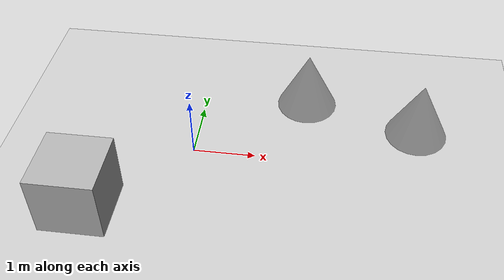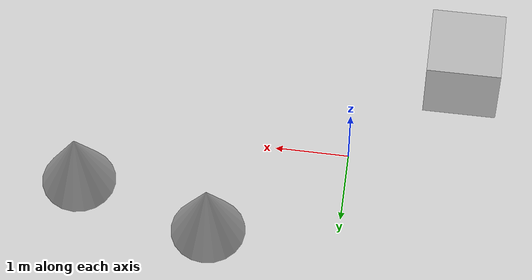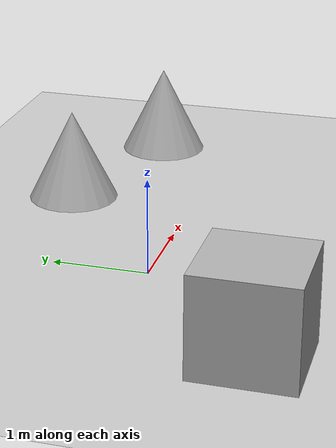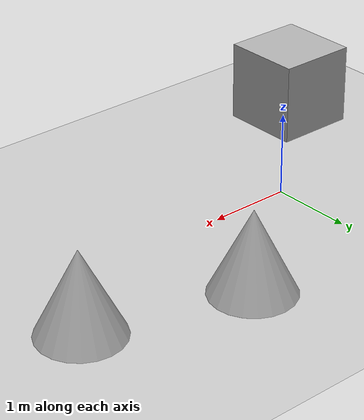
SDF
<sdf version='1.10'>
  <world name='empty'>
    <physics name='1ms' type='ignored'>
      <max_step_size>0.001</max_step_size>
      <real_time_factor>1</real_time_factor>
      <real_time_update_rate>1000</real_time_update_rate>
    </physics>
    <plugin name='gz::sim::systems::Physics' filename='gz-sim-physics-system'/>
    <plugin name='gz::sim::systems::UserCommands' filename='gz-sim-user-commands-system'/>
    <plugin name='gz::sim::systems::SceneBroadcaster' filename='gz-sim-scene-broadcaster-system'/>
    <plugin name='gz::sim::systems::Contact' filename='gz-sim-contact-system'/>
    <plugin name='gz::sim::systems::Sensors' filename='gz-sim-sensors-system'>
      <render_engine>ogre2</render_engine>
    </plugin>
    <gravity>0 0 -9.8000000000000007</gravity>
    <magnetic_field>5.5644999999999998e-06 2.2875799999999999e-05 -4.2388400000000002e-05</magnetic_field>
    <atmosphere type='adiabatic'/>
    <scene>
      <ambient>0.400000006 0.400000006 0.400000006 1</ambient>
      <background>0.699999988 0.699999988 0.699999988 1</background>
      <shadows>true</shadows>
    </scene>
    <model name='ground_plane'>
      <static>true</static>
      <link name='link'>
        <collision name='collision'>
          <geometry>
            <plane>
              <normal>0 0 1</normal>
              <size>100 100</size>
            </plane>
          </geometry>
          <surface>
            <friction>
              <ode/>
            </friction>
            <bounce/>
            <contact/>
          </surface>
        </collision>
        <visual name='visual'>
          <geometry>
            <plane>
              <normal>0 0 1</normal>
              <size>100 100</size>
            </plane>
          </geometry>
          <material>
            <ambient>0.800000012 0.800000012 0.800000012 1</ambient>
            <diffuse>0.800000012 0.800000012 0.800000012 1</diffuse>
            <specular>0.800000012 0.800000012 0.800000012 1</specular>
          </material>
        </visual>
        <pose>0 0 0 0 0 0</pose>
        <inertial>
          <pose>0 0 0 0 0 0</pose>
          <mass>1</mass>
          <inertia>
            <ixx>1</ixx>
            <ixy>0</ixy>
            <ixz>0</ixz>
            <iyy>1</iyy>
            <iyz>0</iyz>
            <izz>1</izz>
          </inertia>
        </inertial>
        <enable_wind>false</enable_wind>
      </link>
      <pose>0 0 0 0 0 0</pose>
      <self_collide>false</self_collide>
    </model>
    <model name='cone'>
      <pose>1.734006085769956 1.3852597027308171 0.49999999993296756 5.2541471503228405e-17 -7.7132841033694056e-10 -2.8937183272912105e-22</pose>
      <link name='cone_link'>
        <inertial>
          <inertia>
            <ixx>0.074999999999999997</ixx>
            <ixy>0</ixy>
            <ixz>0</ixz>
            <iyy>0.074999999999999997</iyy>
            <iyz>0</iyz>
            <izz>0.074999999999999997</izz>
          </inertia>
          <mass>1</mass>
          <pose>0 0 0 0 0 0</pose>
        </inertial>
        <collision name='cone_collision'>
          <geometry>
            <cone>
              <radius>0.5</radius>
              <length>1</length>
            </cone>
          </geometry>
          <surface>
            <friction>
              <ode/>
            </friction>
            <bounce/>
            <contact/>
          </surface>
        </collision>
        <visual name='cone_visual'>
          <geometry>
            <cone>
              <radius>0.5</radius>
              <length>1</length>
            </cone>
          </geometry>
          <material>
            <ambient>0.300000012 0.300000012 0.300000012 1</ambient>
            <diffuse>0.699999988 0.699999988 0.699999988 1</diffuse>
            <specular>1 1 1 1</specular>
          </material>
        </visual>
        <pose>0 0 0 0 0 0</pose>
        <enable_wind>false</enable_wind>
      </link>
      <static>false</static>
      <self_collide>false</self_collide>
    </model>
    <model name='box'>
      <pose>-1.4294189052439004 -1.3719851888915766 0.49999999990199806 6.2287739151293738e-22 9.3279666454713669e-22 -3.6315533669320137e-22</pose>
      <link name='box_link'>
        <inertial>
          <inertia>
            <ixx>0.16666</ixx>
            <ixy>0</ixy>
            <ixz>0</ixz>
            <iyy>0.16666</iyy>
            <iyz>0</iyz>
            <izz>0.16666</izz>
          </inertia>
          <mass>1</mass>
          <pose>0 0 0 0 0 0</pose>
        </inertial>
        <collision name='box_collision'>
          <geometry>
            <box>
              <size>1 1 1</size>
            </box>
          </geometry>
          <surface>
            <friction>
              <ode/>
            </friction>
            <bounce/>
            <contact/>
          </surface>
        </collision>
        <visual name='box_visual'>
          <geometry>
            <box>
              <size>1 1 1</size>
            </box>
          </geometry>
          <material>
            <ambient>0.300000012 0.300000012 0.300000012 1</ambient>
            <diffuse>0.699999988 0.699999988 0.699999988 1</diffuse>
            <specular>1 1 1 1</specular>
          </material>
        </visual>
        <pose>0 0 0 0 0 0</pose>
        <enable_wind>false</enable_wind>
      </link>
      <static>false</static>
      <self_collide>false</self_collide>
    </model>
    <model name='cone_0'>
      <pose>3.5736609363290355 0.83304462126417089 0.49999999993296756 5.2539673238603227e-17 -7.7132841034849224e-10 -2.2042306062451038e-22</pose>
      <link name='cone_link'>
        <inertial>
          <inertia>
            <ixx>0.074999999999999997</ixx>
            <ixy>0</ixy>
            <ixz>0</ixz>
            <iyy>0.074999999999999997</iyy>
            <iyz>0</iyz>
            <izz>0.074999999999999997</izz>
          </inertia>
          <mass>1</mass>
          <pose>0 0 0 0 0 0</pose>
        </inertial>
        <collision name='cone_collision'>
          <geometry>
            <cone>
              <radius>0.5</radius>
              <length>1</length>
            </cone>
          </geometry>
          <surface>
            <friction>
              <ode/>
            </friction>
            <bounce/>
            <contact/>
          </surface>
        </collision>
        <visual name='cone_visual'>
          <geometry>
            <cone>
              <radius>0.5</radius>
              <length>1</length>
            </cone>
          </geometry>
          <material>
            <ambient>0.300000012 0.300000012 0.300000012 1</ambient>
            <diffuse>0.699999988 0.699999988 0.699999988 1</diffuse>
            <specular>1 1 1 1</specular>
          </material>
        </visual>
        <pose>0 0 0 0 0 0</pose>
        <enable_wind>false</enable_wind>
      </link>
      <static>false</static>
      <self_collide>false</self_collide>
    </model>
    <light name='sun' type='directional'>
      <pose>0 0 10 0 0 0</pose>
      <cast_shadows>true</cast_shadows>
      <intensity>1</intensity>
      <direction>-0.5 0.10000000000000001 -0.90000000000000002</direction>
      <diffuse>0.800000012 0.800000012 0.800000012 1</diffuse>
      <specular>0.200000003 0.200000003 0.200000003 1</specular>
      <attenuation>
        <range>1000</range>
        <linear>0.01</linear>
        <constant>0.90000000000000002</constant>
        <quadratic>0.001</quadratic>
      </attenuation>
      <spot>
        <inner_angle>0</inner_angle>
        <outer_angle>0</outer_angle>
        <falloff>0</falloff>
      </spot>
    </light>
  </world>
</sdf>
